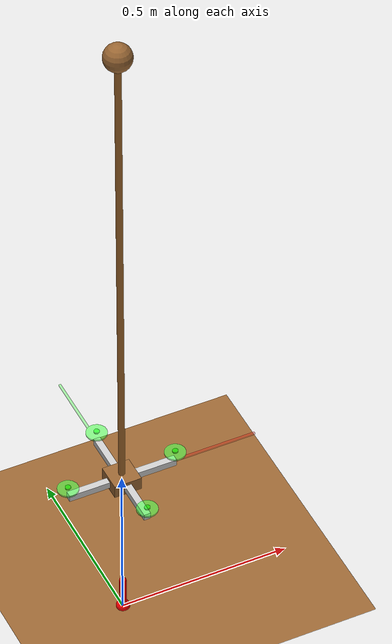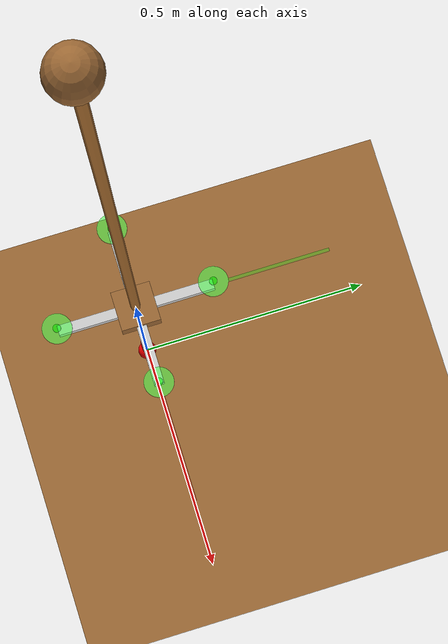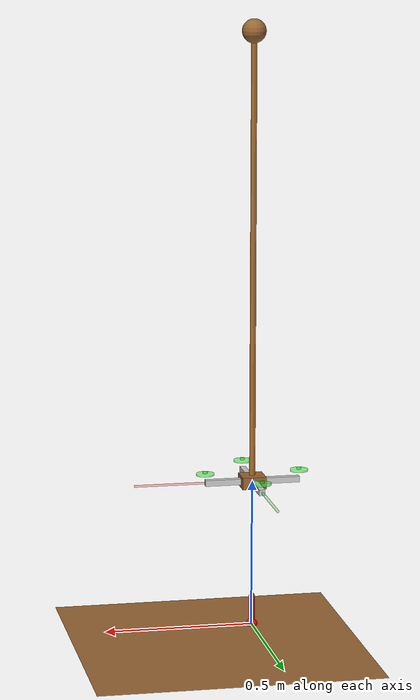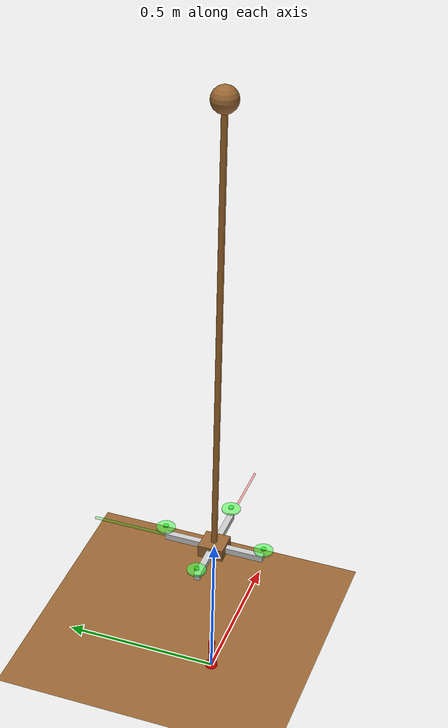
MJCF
<?xml version="1.0" encoding="utf-8"?>
<mujoco model="elastic_rod_drone_v5">

  <compiler angle="radian"/>

  <option timestep="0.001"
          gravity="0 0 -9.81"
          integrator="implicitfast"
          solver="Newton"
          iterations="50"
          tolerance="1e-10"/>

  <default>
    <joint damping="0.15" limited="false"/>
    <geom  contype="1" conaffinity="1" rgba="0.6 0.4 0.2 1"/>
    <!-- ↓ STIFFNESS y DAMPING de los resortes torsionales de la barra ↓ -->
    <default class="spring_hinge">
      <joint type="hinge" stiffness="4" damping="0.15" limited="false"/>
    </default>
  </default>

  <asset>
    <texture type="skybox" builtin="gradient"
             rgb1="0.85 0.92 1.0" rgb2="0.18 0.28 0.55"
             width="512" height="512"/>
    <texture name="tex_floor" type="2d" builtin="checker"
             rgb1="0.72 0.72 0.72" rgb2="0.88 0.88 0.88"
             width="512" height="512"/>
    <material name="mat_floor"   texture="tex_floor" texrepeat="8 8"
              reflectance="0.50" shininess="0.4"/>
    <material name="mat_segment" rgba="0.65 0.42 0.18 1" shininess="0.4"/>
    <material name="mat_joint"   rgba="0.92 0.92 0.92 1" shininess="0.7"/>
    <material name="mat_anchor"  rgba="0.35 0.40 0.95 1" shininess="0.9"/>
    <material name="MatDrone"    rgba="0.18 0.18 0.18 1" shininess="0.9"/>
    <material name="mat_socket"  rgba="0.95 0.75 0.10 1" shininess="1.0"/>
  </asset>

  <worldbody>

    <light name="ambient_light" directional="false"
           pos="0 0 5" dir="0 0 -1"
           diffuse="0.6 0.6 0.6" specular="0.2 0.2 0.2" castshadow="false"/>
    <light name="sun" directional="true"
           pos="2 2 4" dir="-0.5 -0.5 -1"
           diffuse="0.9 0.9 0.85" specular="0.4 0.4 0.4" castshadow="true"/>

    <geom name="floor" type="plane" size="6 6 0.1" material="mat_floor"
          contype="1" conaffinity="1"/>

    <!-- ANCLA + RESORTE LINEAL -->
    <body name="anchor" pos="0 0 2.0">
      <geom name="g_anchor" type="sphere" size="0.04" material="mat_anchor"
            contype="0" conaffinity="0" mass="0.001"/>
      <joint name="root_rx" class="spring_hinge" axis="1 0 0" pos="0 0 0"/>
      <joint name="root_ry" class="spring_hinge" axis="0 1 0" pos="0 0 0"/>
      <site name="anchor_site" pos="0 0 0" size="0.01" rgba="0.35 0.40 0.95 1"/>

      <!-- DRON suspendido por resorte lineal -->
      <body name="drone_3d" pos="0 0 -1.5">
        <joint name="drone_x" type="slide" axis="1 0 0" damping="0" limited="false"/>
        <joint name="drone_y" type="slide" axis="0 1 0" damping="0" limited="false"/>
        <joint name="drone_z" type="slide" axis="0 0 1" damping="0" limited="false"/>
        <joint name="ball_joint" type="ball"
               stiffness="0" damping="0.05" limited="false"/>

        <site name="drone_attach" pos="0 0 0" size="0.008" rgba="0.95 0.75 0.10 1"/>

        <geom name="drone_body" type="box" size="0.04 0.04 0.02"
              material="MatDrone" mass="0.30"
              contype="1" conaffinity="1"/>
        <site name="com_site" pos="0 0 0" size="0.005" rgba="1 0 0 1"/>

        <geom name="arm_x_pos" type="box" pos=" 0.10 0 0"
              size="0.06 0.01 0.01" rgba="0.8 0.8 0.8 1"
              mass="0.02" contype="1" conaffinity="1"/>
        <geom name="arm_x_neg" type="box" pos="-0.10 0 0"
              size="0.06 0.01 0.01" rgba="0.8 0.8 0.8 1"
              mass="0.02" contype="1" conaffinity="1"/>
        <geom name="arm_y_pos" type="box" pos="0  0.10 0"
              size="0.01 0.06 0.01" rgba="0.8 0.8 0.8 1"
              mass="0.02" contype="1" conaffinity="1"/>
        <geom name="arm_y_neg" type="box" pos="0 -0.10 0"
              size="0.01 0.06 0.01" rgba="0.8 0.8 0.8 1"
              mass="0.02" contype="1" conaffinity="1"/>

        <body name="prop0" pos=" 0.16  0.00 0.03">
          <geom type="cylinder" size="0.03 0.003"
                rgba="0.3 1 0.3 0.6" contype="1" conaffinity="1" mass="0.005"/>
          <site name="motor0" pos="0 0 0.003" size="0.008" rgba="0 1 0 0.7" type="cylinder"/>
        </body>
        <body name="prop1" pos="-0.16  0.00 0.03">
          <geom type="cylinder" size="0.03 0.003"
                rgba="0.3 1 0.3 0.6" contype="1" conaffinity="1" mass="0.005"/>
          <site name="motor1" pos="0 0 0.003" size="0.008" rgba="0 1 0 0.7" type="cylinder"/>
        </body>
        <body name="prop2" pos=" 0.00  0.16 0.03">
          <geom type="cylinder" size="0.03 0.003"
                rgba="0.3 1 0.3 0.6" contype="1" conaffinity="1" mass="0.005"/>
          <site name="motor2" pos="0 0 0.003" size="0.008" rgba="0 1 0 0.7" type="cylinder"/>
        </body>
        <body name="prop3" pos=" 0.00 -0.16 0.03">
          <geom type="cylinder" size="0.03 0.003"
                rgba="0.3 1 0.3 0.6" contype="1" conaffinity="1" mass="0.005"/>
          <site name="motor3" pos="0 0 0.003" size="0.008" rgba="0 1 0 0.7" type="cylinder"/>
        </body>

        <site name="x_axis" type="box" pos="0.20 0 0"
              size="0.20 0.003 0.003" rgba="1 0 0 0.3"/>
        <site name="y_axis" type="box" pos="0 0.20 0"
              size="0.003 0.20 0.003" rgba="0 1 0 0.3"/>
        <site name="z_axis" type="box" pos="0 0 0.20"
              size="0.003 0.003 0.20" rgba="0 0 1 0.3"/>

      </body> <!-- /drone_3d -->
    </body>   <!-- /anchor   -->

    <!-- Flecha mocap roja: F_des -->
    <body name="force_arrow_1" mocap="true" pos="0 0 0">
      <geom name="force_geom_1" type="capsule" size="0.01 0.10"
            rgba="1 0 0 1" contype="0" conaffinity="0" mass="0"/>
    </body>

    <!-- Flecha mocap azul: F estimado -->
    <body name="force_arrow_2" mocap="true" pos="0 0 0">
      <geom name="force_geom_2" type="capsule" size="0.01 0.10"
            rgba="0 0 1 1" contype="0" conaffinity="0" mass="0"/>
    </body>

    <!-- Esfera mocap -->
    <body name="point_marker_1" mocap="true" pos="0 0 0">
      <geom name="point_geom_1" type="sphere" size="0.02"
            rgba="1 0 0 1" contype="0" conaffinity="0" mass="0"/>
    </body>

  </worldbody>

  <tendon>
    <spatial name="spring_bar"
             stiffness="2"
             springlength="0.0"
             damping="5.0"
             width="0.010"
             rgba="0.65 0.42 0.18 1">
      <site site="anchor_site"/>
      <site site="drone_attach"/>
    </spatial>
  </tendon>

  <!-- ═══════════════════════════════════
       ACTUADORES
       ↓ THRUST_MAX: cambiar "10" en ctrlrange ↓
  ════════════════════════════════════ -->
  <actuator>
    <general name="u1_thrust" site="com_site"
             ctrllimited="true" ctrlrange="0 10"
             gear="0 0 1  0 0 0"/>
    <general name="u2_tau_x"  site="com_site"
             ctrllimited="true" ctrlrange="-1 1"
             gear="0 0 0  1 0 0"/>
    <general name="u3_tau_y"  site="com_site"
             ctrllimited="true" ctrlrange="-1 1"
             gear="0 0 0  0 1 0"/>
    <general name="u4_tau_z"  site="com_site"
             ctrllimited="true" ctrlrange="-0.2 0.2"
             gear="0 0 0  0 0 1"/>
  </actuator>

  <sensor>
    <framepos    name="pos_drone"    objtype="body" objname="drone_3d"/>
    <framequat   name="quat_drone"   objtype="body" objname="drone_3d"/>
    <framelinvel name="linvel_drone" objtype="body" objname="drone_3d"/>
    <frameangvel name="rotvel_drone" objtype="body" objname="drone_3d"/>

    <jointpos name="s_root_rx" joint="root_rx"/>
    <jointpos name="s_root_ry" joint="root_ry"/>

    <ballquat   name="s_ball_quat"   joint="ball_joint"/>
    <ballangvel name="s_ball_angvel" joint="ball_joint"/>
  </sensor>

</mujoco>
